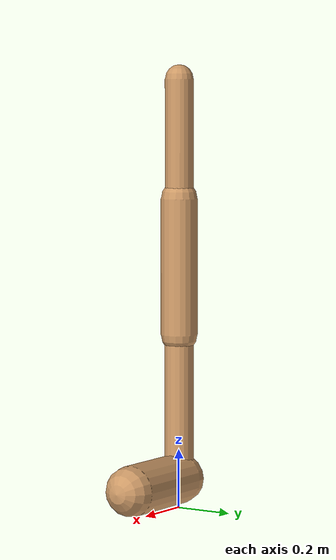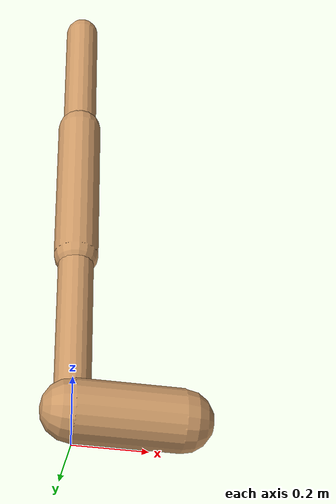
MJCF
<mujoco model="walker2d">
  <compiler angle="degree" coordinate="global" inertiafromgeom="true" />
  <default>
    <joint armature="0.01" damping=".1" limited="true" />
    <geom conaffinity="0" condim="3" contype="1" density="1000" friction="0.8 .1 .1" rgba="0.8 0.6 .4 1" />
  </default>
  <option integrator="RK4" timestep="0.002" />
  <worldbody>

    <body name="torso" pos="0 0 0.017863577070982233">
      <joint armature="0" axis="1 0 0" damping="0" limited="false" name="ignorex" pos="0 0 0" stiffness="0" type="slide" />
      <joint armature="0" axis="0 0 1" damping="0" limited="false" name="ignorez" pos="0 0 0" ref="1.25" stiffness="0" type="slide" />
      <joint armature="0" axis="0 1 0" damping="0" limited="false" name="ignorey" pos="0 0 0" stiffness="0" type="hinge" />
      <geom fromto="0 0 1.45 0 0 1.05" name="torso_geom" size="0.048021275755989" type="capsule" />
      <body name="thigh">
        <joint axis="0 -1 0" name="thigh_joint" pos="0 0 1.05" range="-150 0" type="hinge" />
        <geom fromto="0.0 0.0 1.05 0.0 0.0 0.5915383055979557" name="thigh_geom" size="0.06194414906040805" type="capsule" />
        <body name="leg" pos="0.0 0.0 -0.00846169440204425">
          <joint axis="0 -1 0" name="leg_joint" pos="0 0 0.6" range="-150 0" type="hinge" />
          <geom fromto="0.0 0.0 0.6 0.0 0.0 0.09059811733106199" name="leg_geom" size="0.04955531924832644" type="capsule" />
          <body name="foot" pos="0.0 0.0 -0.009401882668938016">
            <joint axis="0 -1 0" name="foot_joint" pos="0 0 0.1" range="-45 45" type="hinge" />
            <geom fromto="-0.0 0.0 0.09999999999999998 0.28748479275601196 0.0 0.09999999999999998" name="foot_geom" size="0.08446245596793954" type="capsule" />
          </body>
        </body>
      </body>

      <body name="thigh_left">
        <joint axis="0 -1 0" name="thigh_left_joint" pos="0 0 1.05" range="-150 0" type="hinge" />
        <geom fromto="0.0 0.0 1.05 0.0 0.0 0.5915383055979557" name="thigh_left_geom" rgba=".7 .3 .6 1" size="0.06194414906040805" type="capsule" />
        <body name="leg_left" pos="0.0 0.0 -0.00846169440204425">
          <joint axis="0 -1 0" name="leg_left_joint" pos="0 0 0.6" range="-150 0" type="hinge" />
          <geom fromto="0.0 0.0 0.6 0.0 0.0 0.09059811733106199" name="leg_left_geom" rgba=".7 .3 .6 1" size="0.04955531924832644" type="capsule" />
          <body name="foot_left" pos="0.0 0.0 -0.009401882668938016">
            <joint axis="0 -1 0" name="foot_left_joint" pos="0 0 0.1" range="-45 45" type="hinge" />
            <geom fromto="-0.0 0.0 0.09999999999999998 0.28748479275601196 0.0 0.09999999999999998" name="foot_left_geom" rgba=".7 .3 .6 1" size="0.08446245596793954" type="capsule" />
          </body>
        </body>
      </body>
    </body>
  </worldbody>
  <actuator>

    <motor ctrllimited="true" ctrlrange="-1.0 1.0" gear="100" joint="thigh_joint" />
    <motor ctrllimited="true" ctrlrange="-1.0 1.0" gear="100" joint="leg_joint" />
    <motor ctrllimited="true" ctrlrange="-1.0 1.0" gear="100" joint="foot_joint" />
    <motor ctrllimited="true" ctrlrange="-1.0 1.0" gear="100" joint="thigh_left_joint" />
    <motor ctrllimited="true" ctrlrange="-1.0 1.0" gear="100" joint="leg_left_joint" />
    <motor ctrllimited="true" ctrlrange="-1.0 1.0" gear="100" joint="foot_left_joint" />

  </actuator>
</mujoco>
